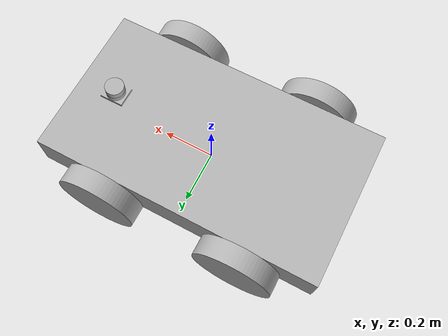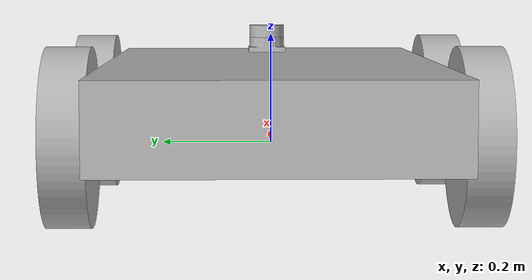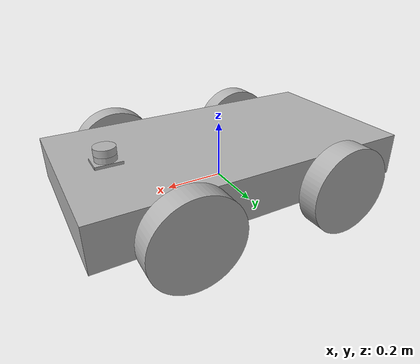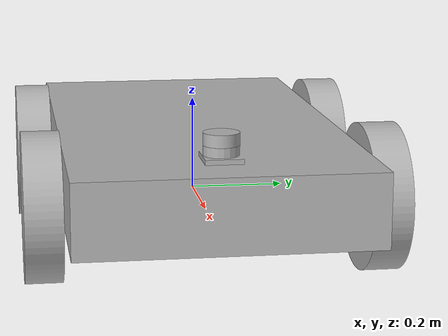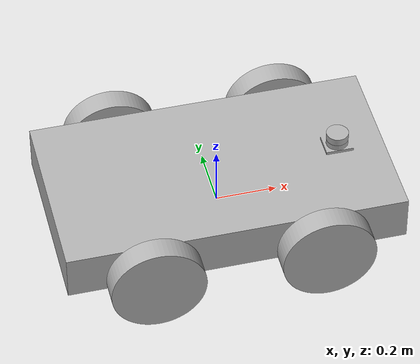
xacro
<?xml version="1.0" ?>
<robot name="Sim" xmlns:xacro="http://www.ros.org/wiki/xacro">

<xacro:include filename="$(find Sim_description)/urdf/materials.xacro" />
<xacro:include filename="$(find Sim_description)/urdf/Sim.trans" />
<xacro:include filename="$(find Sim_description)/urdf/Sim.gazebo" />
<link name="base_link">
  <inertial>
    <origin rpy="0 0 0" xyz="0.0006007577009604423 0.0 0.07512755869305572"/>
    <mass value="105.11118623932714"/>
    <inertia ixx="3.347522" ixy="0.0" ixz="-0.005562" iyy="10.805776" iyz="0.0" izz="13.757255"/>
  </inertial>
  <visual>
    <origin rpy="0 0 0" xyz="0 0 0"/>
    <geometry>
      <mesh filename="package://Sim_description/meshes/base_link.stl" scale="0.001 0.001 0.001"/>
    </geometry>
    <material name="silver"/>
  </visual>
  <collision>
    <origin rpy="0 0 0" xyz="0 0 0"/>
    <geometry>
      <mesh filename="package://Sim_description/meshes/base_link.stl" scale="0.001 0.001 0.001"/>
    </geometry>
  </collision>
</link>

<link name="wheel1_1">
  <inertial>
    <origin rpy="0 0 0" xyz="4.551914400963142e-15 -0.03311871322111437 1.3877787807814457e-17"/>
    <mass value="5.16787815760831"/>
    <inertia ixx="0.032523" ixy="0.0" ixz="0.0" iyy="0.060048" iyz="0.0" izz="0.032523"/>
  </inertial>
  <visual>
    <origin rpy="0 0 0" xyz="-0.275 0.31 -0.03625"/>
    <geometry>
      <mesh filename="package://Sim_description/meshes/wheel1_1.stl" scale="0.001 0.001 0.001"/>
    </geometry>
    <material name="silver"/>
  </visual>
  <collision>
    <origin rpy="0 0 0" xyz="-0.275 0.31 -0.03625"/>
    <geometry>
      <mesh filename="package://Sim_description/meshes/wheel1_1.stl" scale="0.001 0.001 0.001"/>
    </geometry>
  </collision>
</link>

<link name="wheel4_1">
  <inertial>
    <origin rpy="0 0 0" xyz="-4.440892098500626e-15 -0.03311871322111437 1.3877787807814457e-17"/>
    <mass value="5.16787815760831"/>
    <inertia ixx="0.032523" ixy="-0.0" ixz="0.0" iyy="0.060048" iyz="0.0" izz="0.032523"/>
  </inertial>
  <visual>
    <origin rpy="0 0 0" xyz="0.275 0.31 -0.03625"/>
    <geometry>
      <mesh filename="package://Sim_description/meshes/wheel4_1.stl" scale="0.001 0.001 0.001"/>
    </geometry>
    <material name="silver"/>
  </visual>
  <collision>
    <origin rpy="0 0 0" xyz="0.275 0.31 -0.03625"/>
    <geometry>
      <mesh filename="package://Sim_description/meshes/wheel4_1.stl" scale="0.001 0.001 0.001"/>
    </geometry>
  </collision>
</link>

<link name="wheel2_1">
  <inertial>
    <origin rpy="0 0 0" xyz="0.0 0.03311871322111437 1.3877787807814457e-17"/>
    <mass value="5.16787815760831"/>
    <inertia ixx="0.032523" ixy="0.0" ixz="0.0" iyy="0.060048" iyz="-0.0" izz="0.032523"/>
  </inertial>
  <visual>
    <origin rpy="0 0 0" xyz="-0.275 -0.31 -0.03625"/>
    <geometry>
      <mesh filename="package://Sim_description/meshes/wheel2_1.stl" scale="0.001 0.001 0.001"/>
    </geometry>
    <material name="silver"/>
  </visual>
  <collision>
    <origin rpy="0 0 0" xyz="-0.275 -0.31 -0.03625"/>
    <geometry>
      <mesh filename="package://Sim_description/meshes/wheel2_1.stl" scale="0.001 0.001 0.001"/>
    </geometry>
  </collision>
</link>

<link name="wheel3_1">
  <inertial>
    <origin rpy="0 0 0" xyz="0.0 0.03311871322111437 1.3877787807814457e-17"/>
    <mass value="5.16787815760831"/>
    <inertia ixx="0.032523" ixy="0.0" ixz="0.0" iyy="0.060048" iyz="-0.0" izz="0.032523"/>
  </inertial>
  <visual>
    <origin rpy="0 0 0" xyz="0.275 -0.31 -0.03625"/>
    <geometry>
      <mesh filename="package://Sim_description/meshes/wheel3_1.stl" scale="0.001 0.001 0.001"/>
    </geometry>
    <material name="silver"/>
  </visual>
  <collision>
    <origin rpy="0 0 0" xyz="0.275 -0.31 -0.03625"/>
    <geometry>
      <mesh filename="package://Sim_description/meshes/wheel3_1.stl" scale="0.001 0.001 0.001"/>
    </geometry>
  </collision>
</link>

<link name="lidar_1">
  <inertial>
    <origin rpy="0 0 0" xyz="5.551115123125783e-17 -5.5845130209510275e-18 0.012500000000000011"/>
    <mass value="0.10789485809488791"/>
    <inertia ixx="4.1e-05" ixy="0.0" ixz="0.0" iyy="4.1e-05" iyz="-0.0" izz="7e-05"/>
  </inertial>
  <visual>
    <origin rpy="0 0 0" xyz="-0.4 -0.0 -0.18"/>
    <geometry>
      <mesh filename="package://Sim_description/meshes/lidar_1.stl" scale="0.001 0.001 0.001"/>
    </geometry>
    <material name="silver"/>
  </visual>
  <collision>
    <origin rpy="0 0 0" xyz="-0.4 -0.0 -0.18"/>
    <geometry>
      <mesh filename="package://Sim_description/meshes/lidar_1.stl" scale="0.001 0.001 0.001"/>
    </geometry>
  </collision>
</link>

<joint name="Rev1" type="continuous">
  <origin rpy="0 0 0" xyz="0.275 -0.31 0.03625"/>
  <parent link="base_link"/>
  <child link="wheel1_1"/>
  <axis xyz="0.0 -1.0 0.0"/>
</joint>

<joint name="Rev2" type="continuous">
  <origin rpy="0 0 0" xyz="-0.275 -0.31 0.03625"/>
  <parent link="base_link"/>
  <child link="wheel4_1"/>
  <axis xyz="0.0 -1.0 0.0"/>
</joint>

<joint name="Rev3" type="continuous">
  <origin rpy="0 0 0" xyz="0.275 0.31 0.03625"/>
  <parent link="base_link"/>
  <child link="wheel2_1"/>
  <axis xyz="0.0 1.0 0.0"/>
</joint>

<joint name="Rev4" type="continuous">
  <origin rpy="0 0 0" xyz="-0.275 0.31 0.03625"/>
  <parent link="base_link"/>
  <child link="wheel3_1"/>
  <axis xyz="0.0 1.0 0.0"/>
</joint>

<joint name="Rigid5" type="fixed">
  <origin rpy="0 0 0" xyz="0.4 0.0 0.18"/>
  <parent link="base_link"/>
  <child link="lidar_1"/>
</joint>

</robot>

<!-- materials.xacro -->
<robot name="Sim" xmlns:xacro="http://www.ros.org/wiki/xacro" >

<material name="silver">
  <color rgba="0.700 0.700 0.700 1.000"/>
</material>

</robot>

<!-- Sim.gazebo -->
<robot name="Sim" xmlns:xacro="http://www.ros.org/wiki/xacro" >

<xacro:property name="body_color" value="Gazebo/Silver" />

<gazebo>
  <plugin filename="libgazebo_ros_control.so" name="control"/>
</gazebo>
<gazebo reference="base_link">
  <material>${body_color}</material>
  <mu1>0.2</mu1>
  <mu2>0.2</mu2>
  <selfCollide>true</selfCollide>
  <gravity>true</gravity>
</gazebo>

<gazebo reference="wheel1_1">
  <material>${body_color}</material>
  <mu1>0.2</mu1>
  <mu2>0.2</mu2>
  <selfCollide>true</selfCollide>
</gazebo>

<gazebo reference="wheel4_1">
  <material>${body_color}</material>
  <mu1>0.2</mu1>
  <mu2>0.2</mu2>
  <selfCollide>true</selfCollide>
</gazebo>

<gazebo reference="wheel2_1">
  <material>${body_color}</material>
  <mu1>0.2</mu1>
  <mu2>0.2</mu2>
  <selfCollide>true</selfCollide>
</gazebo>

<gazebo reference="wheel3_1">
  <material>${body_color}</material>
  <mu1>0.2</mu1>
  <mu2>0.2</mu2>
  <selfCollide>true</selfCollide>
</gazebo>

<gazebo reference="lidar_1">
  <material>${body_color}</material>
  <mu1>0.2</mu1>
  <mu2>0.2</mu2>
  <selfCollide>true</selfCollide>
</gazebo>

</robot>
